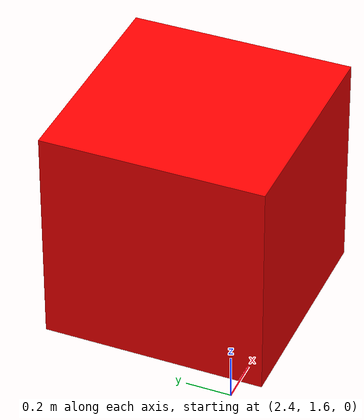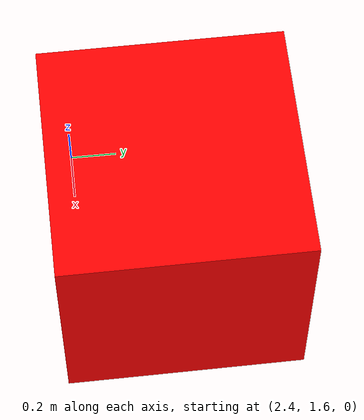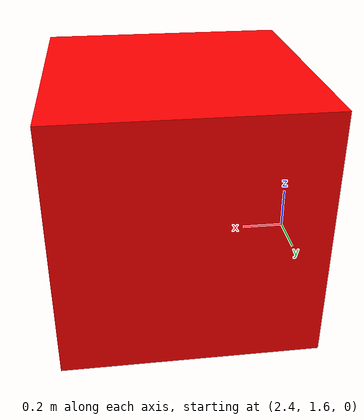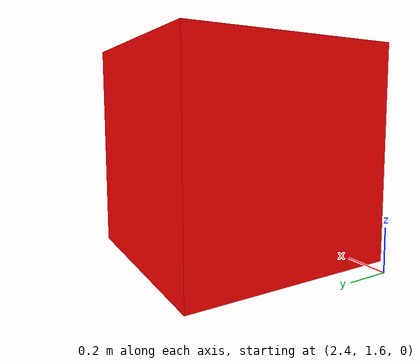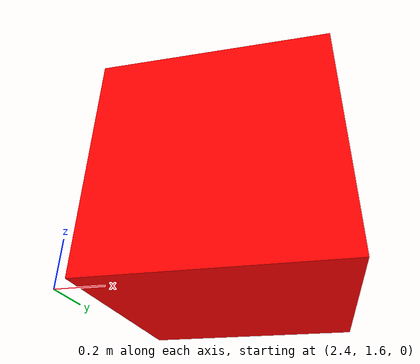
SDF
<?xml version="1.0" ?>
<sdf version="1.10">
    <model name="redCube1x1x1">
      <static>true</static>
      <pose>3 2 0.5 0 0 0</pose>
      <link name="link">
        <collision name="collision">
          <geometry><box><size>1 1 1</size></box></geometry>
        </collision>
        <visual name="visual">
          <geometry><box><size>1 1 1</size></box></geometry>
          <material>
            <ambient>1 0 0 1</ambient>
            <diffuse>1 0 0 1</diffuse>
            <specular>0.5 0.5 0.5 1</specular>
          </material>
          <plugin
            filename="gz-sim-thermal-system"
            name="gz::sim::systems::Thermal">
            <temperature>373.50</temperature>
            <emissivity>0.9</emissivity>
          </plugin>
        </visual>
      </link>
    </model>
</sdf>
